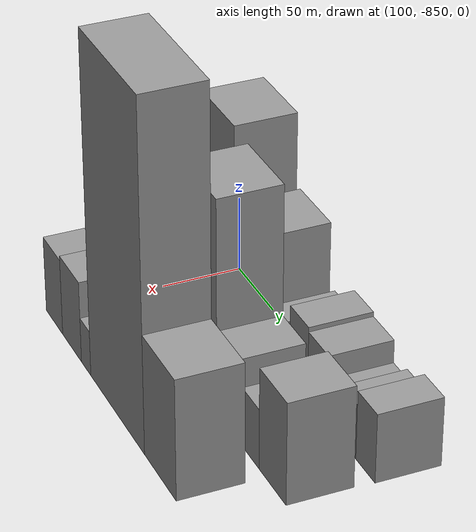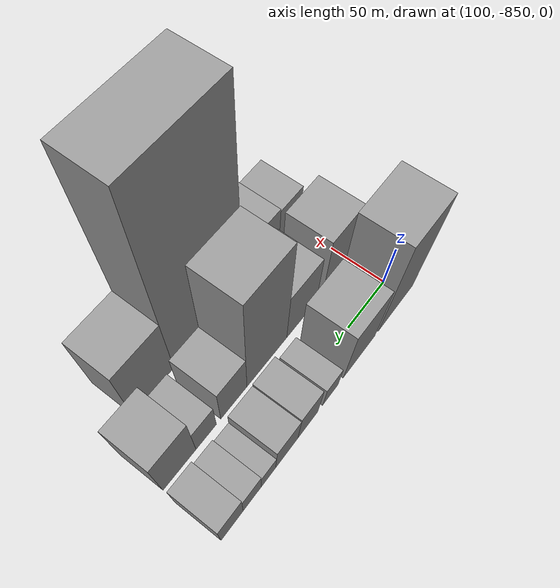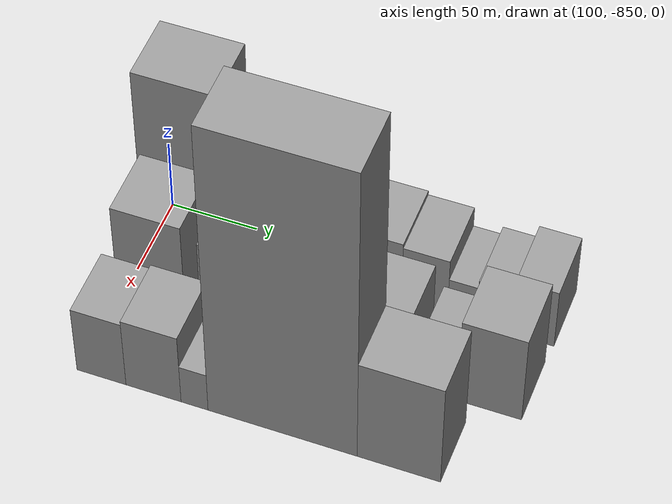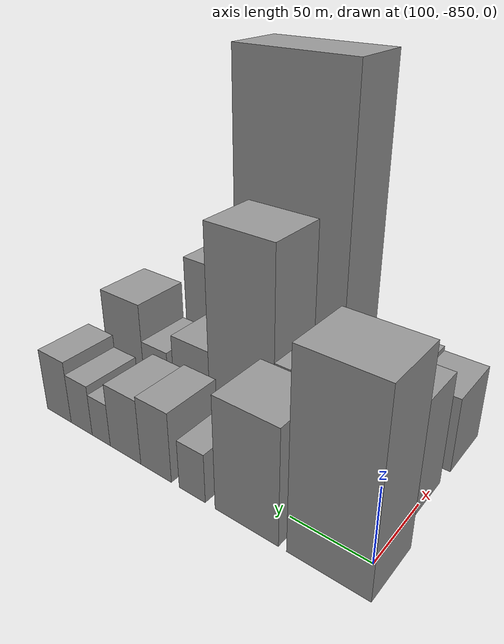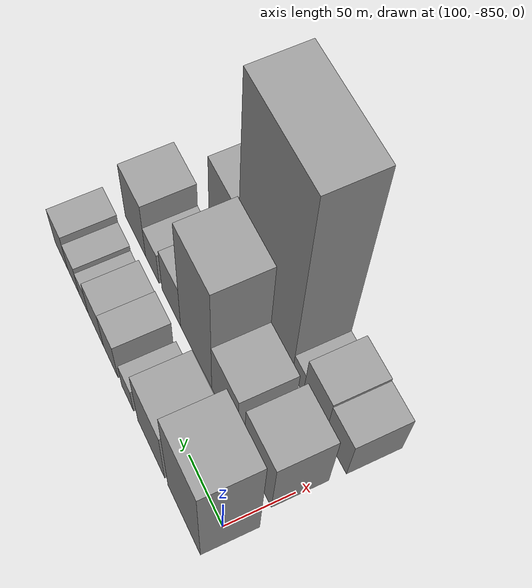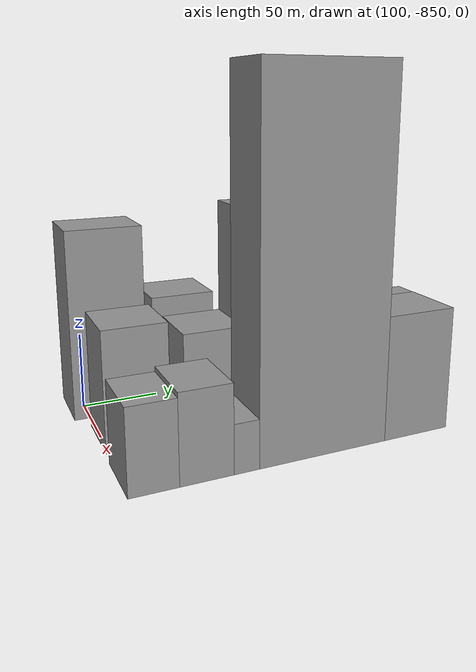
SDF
<sdf version="1.6">
 <world name="default">
  <model name="building_1">
   <static>1</static>
   <pose>100.0000 -835.8675 0 0.000000 0.000000 0.000000</pose>
   <link name="link">
    <pose>0 0 61.50 0 0 0</pose>
    <collision name="collision"><geometry><box><size>40.0000 48.2651 123.0000</size></box></geometry></collision>
    <visual name="visual">
     <cast_shadows>0</cast_shadows>
     <geometry><box><size>40.0000 48.2651 123.0000</size></box></geometry>
     <material>
      <script>
       <uri>model://grey_wall/materials/scripts</uri>
       <uri>model://grey_wall/materials/textures</uri>
       <name>vrc/grey_wall</name>
      </script>
     </material>
    </visual>
   </link>
  </model>
  <model name="building_2">
   <static>1</static>
   <pose>100.0000 -785.6989 0 0.000000 0.000000 0.000000</pose>
   <link name="link">
    <pose>0 0 37.50 0 0 0</pose>
    <collision name="collision"><geometry><box><size>40.0000 42.0720 75.0000</size></box></geometry></collision>
    <visual name="visual">
     <cast_shadows>0</cast_shadows>
     <geometry><box><size>40.0000 42.0720 75.0000</size></box></geometry>
     <material>
      <script>
       <uri>model://grey_wall/materials/scripts</uri>
       <uri>model://grey_wall/materials/textures</uri>
       <name>vrc/grey_wall</name>
      </script>
     </material>
    </visual>
   </link>
  </model>
  <model name="building_3">
   <static>1</static>
   <pose>100.0000 -747.9911 0 0.000000 0.000000 0.000000</pose>
   <link name="link">
    <pose>0 0 16.50 0 0 0</pose>
    <collision name="collision"><geometry><box><size>40.0000 19.3437 33.0000</size></box></geometry></collision>
    <visual name="visual">
     <cast_shadows>0</cast_shadows>
     <geometry><box><size>40.0000 19.3437 33.0000</size></box></geometry>
     <material>
      <script>
       <uri>model://grey_wall/materials/scripts</uri>
       <uri>model://grey_wall/materials/textures</uri>
       <name>vrc/grey_wall</name>
      </script>
     </material>
    </visual>
   </link>
  </model>
  <model name="building_4">
   <static>1</static>
   <pose>100.0000 -720.0713 0 0.000000 0.000000 0.000000</pose>
   <link name="link">
    <pose>0 0 24.00 0 0 0</pose>
    <collision name="collision"><geometry><box><size>40.0000 24.4960 48.0000</size></box></geometry></collision>
    <visual name="visual">
     <cast_shadows>0</cast_shadows>
     <geometry><box><size>40.0000 24.4960 48.0000</size></box></geometry>
     <material>
      <script>
       <uri>model://grey_wall/materials/scripts</uri>
       <uri>model://grey_wall/materials/textures</uri>
       <name>vrc/grey_wall</name>
      </script>
     </material>
    </visual>
   </link>
  </model>
  <model name="building_5">
   <static>1</static>
   <pose>100.0000 -694.7094 0 0.000000 0.000000 0.000000</pose>
   <link name="link">
    <pose>0 0 22.50 0 0 0</pose>
    <collision name="collision"><geometry><box><size>40.0000 26.2278 45.0000</size></box></geometry></collision>
    <visual name="visual">
     <cast_shadows>0</cast_shadows>
     <geometry><box><size>40.0000 26.2278 45.0000</size></box></geometry>
     <material>
      <script>
       <uri>model://grey_wall/materials/scripts</uri>
       <uri>model://grey_wall/materials/textures</uri>
       <name>vrc/grey_wall</name>
      </script>
     </material>
    </visual>
   </link>
  </model>
  <model name="building_6">
   <static>1</static>
   <pose>100.0000 -673.3801 0 0.000000 0.000000 0.000000</pose>
   <link name="link">
    <pose>0 0 15.00 0 0 0</pose>
    <collision name="collision"><geometry><box><size>40.0000 16.4307 30.0000</size></box></geometry></collision>
    <visual name="visual">
     <cast_shadows>0</cast_shadows>
     <geometry><box><size>40.0000 16.4307 30.0000</size></box></geometry>
     <material>
      <script>
       <uri>model://grey_wall/materials/scripts</uri>
       <uri>model://grey_wall/materials/textures</uri>
       <name>vrc/grey_wall</name>
      </script>
     </material>
    </visual>
   </link>
  </model>
  <model name="building_7">
   <static>1</static>
   <pose>100.0000 -655.2093 0 0.000000 0.000000 0.000000</pose>
   <link name="link">
    <pose>0 0 18.00 0 0 0</pose>
    <collision name="collision"><geometry><box><size>40.0000 19.9109 36.0000</size></box></geometry></collision>
    <visual name="visual">
     <cast_shadows>0</cast_shadows>
     <geometry><box><size>40.0000 19.9109 36.0000</size></box></geometry>
     <material>
      <script>
       <uri>model://grey_wall/materials/scripts</uri>
       <uri>model://grey_wall/materials/textures</uri>
       <name>vrc/grey_wall</name>
      </script>
     </material>
    </visual>
   </link>
  </model>
  <model name="building_8">
   <static>1</static>
   <pose>100.0000 -633.3928 0 0.000000 0.000000 0.000000</pose>
   <link name="link">
    <pose>0 0 22.50 0 0 0</pose>
    <collision name="collision"><geometry><box><size>40.0000 23.7222 45.0000</size></box></geometry></collision>
    <visual name="visual">
     <cast_shadows>0</cast_shadows>
     <geometry><box><size>40.0000 23.7222 45.0000</size></box></geometry>
     <material>
      <script>
       <uri>model://grey_wall/materials/scripts</uri>
       <uri>model://grey_wall/materials/textures</uri>
       <name>vrc/grey_wall</name>
      </script>
     </material>
    </visual>
   </link>
  </model>
  <model name="building_59">
   <static>1</static>
   <pose>152.0000 -832.2248 0 0.000000 0.000000 0.000000</pose>
   <link name="link">
    <pose>0 0 37.50 0 0 0</pose>
    <collision name="collision"><geometry><box><size>40.0000 39.5504 75.0000</size></box></geometry></collision>
    <visual name="visual">
     <cast_shadows>0</cast_shadows>
     <geometry><box><size>40.0000 39.5504 75.0000</size></box></geometry>
     <material>
      <script>
       <uri>model://grey_wall/materials/scripts</uri>
       <uri>model://grey_wall/materials/textures</uri>
       <name>vrc/grey_wall</name>
      </script>
     </material>
    </visual>
   </link>
  </model>
  <model name="building_60">
   <static>1</static>
   <pose>152.0000 -784.2301 0 0.000000 0.000000 0.000000</pose>
   <link name="link">
    <pose>0 0 33.00 0 0 0</pose>
    <collision name="collision"><geometry><box><size>40.0000 38.4390 66.0000</size></box></geometry></collision>
    <visual name="visual">
     <cast_shadows>0</cast_shadows>
     <geometry><box><size>40.0000 38.4390 66.0000</size></box></geometry>
     <material>
      <script>
       <uri>model://grey_wall/materials/scripts</uri>
       <uri>model://grey_wall/materials/textures</uri>
       <name>vrc/grey_wall</name>
      </script>
     </material>
    </visual>
   </link>
  </model>
  <model name="building_61">
   <static>1</static>
   <pose>152.0000 -740.5774 0 0.000000 0.000000 0.000000</pose>
   <link name="link">
    <pose>0 0 69.00 0 0 0</pose>
    <collision name="collision"><geometry><box><size>40.0000 48.8663 138.0000</size></box></geometry></collision>
    <visual name="visual">
     <cast_shadows>0</cast_shadows>
     <geometry><box><size>40.0000 48.8663 138.0000</size></box></geometry>
     <material>
      <script>
       <uri>model://grey_wall/materials/scripts</uri>
       <uri>model://grey_wall/materials/textures</uri>
       <name>vrc/grey_wall</name>
      </script>
     </material>
    </visual>
   </link>
  </model>
  <model name="building_62">
   <static>1</static>
   <pose>152.0000 -700.9382 0 0.000000 0.000000 0.000000</pose>
   <link name="link">
    <pose>0 0 27.00 0 0 0</pose>
    <collision name="collision"><geometry><box><size>40.0000 30.4121 54.0000</size></box></geometry></collision>
    <visual name="visual">
     <cast_shadows>0</cast_shadows>
     <geometry><box><size>40.0000 30.4121 54.0000</size></box></geometry>
     <material>
      <script>
       <uri>model://grey_wall/materials/scripts</uri>
       <uri>model://grey_wall/materials/textures</uri>
       <name>vrc/grey_wall</name>
      </script>
     </material>
    </visual>
   </link>
  </model>
  <model name="building_63">
   <static>1</static>
   <pose>152.0000 -669.3956 0 0.000000 0.000000 0.000000</pose>
   <link name="link">
    <pose>0 0 19.50 0 0 0</pose>
    <collision name="collision"><geometry><box><size>40.0000 22.6730 39.0000</size></box></geometry></collision>
    <visual name="visual">
     <cast_shadows>0</cast_shadows>
     <geometry><box><size>40.0000 22.6730 39.0000</size></box></geometry>
     <material>
      <script>
       <uri>model://grey_wall/materials/scripts</uri>
       <uri>model://grey_wall/materials/textures</uri>
       <name>vrc/grey_wall</name>
      </script>
     </material>
    </visual>
   </link>
  </model>
  <model name="building_64">
   <static>1</static>
   <pose>152.0000 -640.3801 0 0.000000 0.000000 0.000000</pose>
   <link name="link">
    <pose>0 0 33.00 0 0 0</pose>
    <collision name="collision"><geometry><box><size>40.0000 35.3580 66.0000</size></box></geometry></collision>
    <visual name="visual">
     <cast_shadows>0</cast_shadows>
     <geometry><box><size>40.0000 35.3580 66.0000</size></box></geometry>
     <material>
      <script>
       <uri>model://grey_wall/materials/scripts</uri>
       <uri>model://grey_wall/materials/textures</uri>
       <name>vrc/grey_wall</name>
      </script>
     </material>
    </visual>
   </link>
  </model>
  <model name="building_112">
   <static>1</static>
   <pose>204.0000 -838.8723 0 0.000000 0.000000 0.000000</pose>
   <link name="link">
    <pose>0 0 25.50 0 0 0</pose>
    <collision name="collision"><geometry><box><size>40.0000 28.2554 51.0000</size></box></geometry></collision>
    <visual name="visual">
     <cast_shadows>0</cast_shadows>
     <geometry><box><size>40.0000 28.2554 51.0000</size></box></geometry>
     <material>
      <script>
       <uri>model://grey_wall/materials/scripts</uri>
       <uri>model://grey_wall/materials/textures</uri>
       <name>vrc/grey_wall</name>
      </script>
     </material>
    </visual>
   </link>
  </model>
  <model name="building_113">
   <static>1</static>
   <pose>204.0000 -809.0320 0 0.000000 0.000000 0.000000</pose>
   <link name="link">
    <pose>0 0 27.00 0 0 0</pose>
    <collision name="collision"><geometry><box><size>40.0000 31.4252 54.0000</size></box></geometry></collision>
    <visual name="visual">
     <cast_shadows>0</cast_shadows>
     <geometry><box><size>40.0000 31.4252 54.0000</size></box></geometry>
     <material>
      <script>
       <uri>model://grey_wall/materials/scripts</uri>
       <uri>model://grey_wall/materials/textures</uri>
       <name>vrc/grey_wall</name>
      </script>
     </material>
    </visual>
   </link>
  </model>
  <model name="building_114">
   <static>1</static>
   <pose>204.0000 -785.6874 0 0.000000 0.000000 0.000000</pose>
   <link name="link">
    <pose>0 0 15.00 0 0 0</pose>
    <collision name="collision"><geometry><box><size>40.0000 15.2639 30.0000</size></box></geometry></collision>
    <visual name="visual">
     <cast_shadows>0</cast_shadows>
     <geometry><box><size>40.0000 15.2639 30.0000</size></box></geometry>
     <material>
      <script>
       <uri>model://grey_wall/materials/scripts</uri>
       <uri>model://grey_wall/materials/textures</uri>
       <name>vrc/grey_wall</name>
      </script>
     </material>
    </visual>
   </link>
  </model>
  <model name="building_115">
   <static>1</static>
   <pose>204.0000 -736.5091 0 0.000000 0.000000 0.000000</pose>
   <link name="link">
    <pose>0 0 111.00 0 0 0</pose>
    <collision name="collision"><geometry><box><size>40.0000 83.0926 222.0000</size></box></geometry></collision>
    <visual name="visual">
     <cast_shadows>0</cast_shadows>
     <geometry><box><size>40.0000 83.0926 222.0000</size></box></geometry>
     <material>
      <script>
       <uri>model://grey_wall/materials/scripts</uri>
       <uri>model://grey_wall/materials/textures</uri>
       <name>vrc/grey_wall</name>
      </script>
     </material>
    </visual>
   </link>
  </model>
  <model name="building_116">
   <static>1</static>
   <pose>204.0000 -672.1722 0 0.000000 0.000000 0.000000</pose>
   <link name="link">
    <pose>0 0 39.00 0 0 0</pose>
    <collision name="collision"><geometry><box><size>40.0000 45.5812 78.0000</size></box></geometry></collision>
    <visual name="visual">
     <cast_shadows>0</cast_shadows>
     <geometry><box><size>40.0000 45.5812 78.0000</size></box></geometry>
     <material>
      <script>
       <uri>model://grey_wall/materials/scripts</uri>
       <uri>model://grey_wall/materials/textures</uri>
       <name>vrc/grey_wall</name>
      </script>
     </material>
    </visual>
   </link>
  </model>
 </world>
</sdf>
